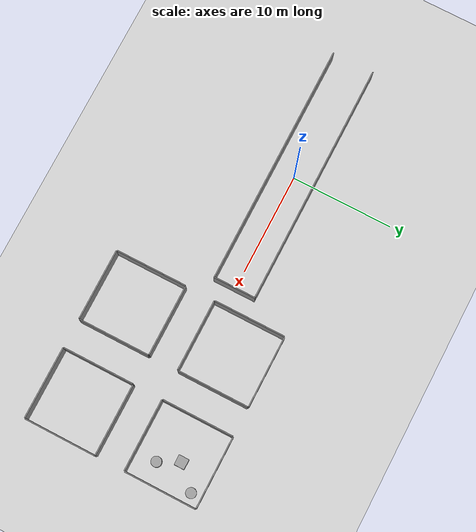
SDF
<sdf version="1.6">
 <world name="default">
  <include><uri>model://ground_plane</uri></include>
  <include><uri>model://sun</uri></include>
  <model name="white-wall">
   <link name="Wall_0">
    <collision name="Wall_0_Collision"><geometry><box><size>24 0.1 2</size></box></geometry></collision>
    <visual name="Wall_0_Visual">
     <geometry><box><size>24 0.1 2</size></box></geometry>
     <material>
      <script><uri>file://media/materials/scripts/gazebo.material</uri><name>Gazebo/Grey</name></script>
      <ambient>1 1 1 1</ambient>
     </material>
     <meta><layer>0</layer></meta>
    </visual>
    <pose>0 -2.05 1 0 -0 0</pose>
   </link>
   <link name="Wall_1">
    <collision name="Wall_1_Collision"><geometry><box><size>24 0.1 2</size></box></geometry></collision>
    <visual name="Wall_1_Visual">
     <geometry><box><size>24 0.1 2</size></box></geometry>
     <material>
      <script><uri>file://media/materials/scripts/gazebo.material</uri><name>Gazebo/Grey</name></script>
      <ambient>1 1 1 1</ambient>
     </material>
     <meta><layer>0</layer></meta>
    </visual>
    <pose>0 2.05 1 0 -0 0</pose>
   </link>
   <link name="Wall_2">
    <collision name="Wall_2_Collision"><geometry><box><size>0.1 4.2 2</size></box></geometry></collision>
    <visual name="Wall_2_Visual">
     <geometry><box><size>0.1 4.2 2</size></box></geometry>
     <material>
      <script><uri>file://media/materials/scripts/gazebo.material</uri><name>Gazebo/Grey</name></script>
      <ambient>1 1 1 1</ambient>
     </material>
     <meta><layer>0</layer></meta>
    </visual>
    <pose>12.05 0 1 0 -0 0</pose>
   </link>
   <static>1</static>
  </model>
  <model name="wall_left">
   <pose>15 0 0 0 0 0</pose>
   <link name="Wall_bottom">
    <collision name="Wall_0_Collision"><geometry><box><size>7 0.1 2</size></box></geometry></collision>
    <visual name="Wall_0_Visual">
     <geometry><box><size>7 0.1 2</size></box></geometry>
     <material>
      <script><uri>file://media/materials/scripts/gazebo.material</uri><name>Gazebo/Grey</name></script>
      <ambient>1 1 1 1</ambient>
     </material>
     <meta><layer>0</layer></meta>
    </visual>
    <pose>2.5 -1.05 1 0 -0 0</pose>
   </link>
   <link name="Wall_up">
    <collision name="Wall_0_Collision"><geometry><box><size>7 0.1 2</size></box></geometry></collision>
    <visual name="Wall_0_Visual">
     <geometry><box><size>7 0.1 2</size></box></geometry>
     <material>
      <script><uri>file://media/materials/scripts/gazebo.material</uri><name>Gazebo/Grey</name></script>
      <ambient>1 1 1 1</ambient>
     </material>
     <meta><layer>0</layer></meta>
    </visual>
    <pose>2.5 6.05 1 0 -0 0</pose>
   </link>
   <link name="Wall_left">
    <collision name="Wall_1_Collision"><geometry><box><size>0.1 7 2</size></box></geometry></collision>
    <visual name="Wall_1_Visual">
     <geometry><box><size>0.1 7 2</size></box></geometry>
     <material>
      <script><uri>file://media/materials/scripts/gazebo.material</uri><name>Gazebo/Grey</name></script>
      <ambient>1 1 1 1</ambient>
     </material>
     <meta><layer>0</layer></meta>
    </visual>
    <pose>-1.05 2.5 1 0 -0 0</pose>
   </link>
   <link name="Wall_right">
    <collision name="Wall_1_Collision"><geometry><box><size>0.1 7 2</size></box></geometry></collision>
    <visual name="Wall_1_Visual">
     <geometry><box><size>0.1 7 2</size></box></geometry>
     <material>
      <script><uri>file://media/materials/scripts/gazebo.material</uri><name>Gazebo/Grey</name></script>
      <ambient>1 1 1 1</ambient>
     </material>
     <meta><layer>0</layer></meta>
    </visual>
    <pose>6.05 2.5 1 0 -0 0</pose>
   </link>
   <static>1</static>
  </model>
  <model name="wall_right">
   <pose>25 0 0 0 0 0</pose>
   <link name="Wall_bottom">
    <collision name="Wall_0_Collision"><geometry><box><size>7 0.1 2</size></box></geometry></collision>
    <visual name="Wall_0_Visual">
     <geometry><box><size>7 0.1 2</size></box></geometry>
     <material>
      <script><uri>file://media/materials/scripts/gazebo.material</uri><name>Gazebo/Grey</name></script>
      <ambient>1 1 1 1</ambient>
     </material>
     <meta><layer>0</layer></meta>
    </visual>
    <pose>2.5 -1.05 1 0 -0 0</pose>
   </link>
   <link name="Wall_up">
    <collision name="Wall_0_Collision"><geometry><box><size>7 0.1 2</size></box></geometry></collision>
    <visual name="Wall_0_Visual">
     <geometry><box><size>7 0.1 2</size></box></geometry>
     <material>
      <script><uri>file://media/materials/scripts/gazebo.material</uri><name>Gazebo/Grey</name></script>
      <ambient>1 1 1 1</ambient>
     </material>
     <meta><layer>0</layer></meta>
    </visual>
    <pose>2.5 6.05 1 0 -0 0</pose>
   </link>
   <link name="Wall_left">
    <collision name="Wall_1_Collision"><geometry><box><size>0.1 7 2</size></box></geometry></collision>
    <visual name="Wall_1_Visual">
     <geometry><box><size>0.1 7 2</size></box></geometry>
     <material>
      <script><uri>file://media/materials/scripts/gazebo.material</uri><name>Gazebo/Grey</name></script>
      <ambient>1 1 1 1</ambient>
     </material>
     <meta><layer>0</layer></meta>
    </visual>
    <pose>-1.05 2.5 1 0 -0 0</pose>
   </link>
   <link name="Wall_right">
    <collision name="Wall_1_Collision"><geometry><box><size>0.1 7 2</size></box></geometry></collision>
    <visual name="Wall_1_Visual">
     <geometry><box><size>0.1 7 2</size></box></geometry>
     <material>
      <script><uri>file://media/materials/scripts/gazebo.material</uri><name>Gazebo/Grey</name></script>
      <ambient>1 1 1 1</ambient>
     </material>
     <meta><layer>0</layer></meta>
    </visual>
    <pose>6.05 2.5 1 0 -0 0</pose>
   </link>
   <static>1</static>
  </model>
  <model name="wall_left_down">
   <pose>15 -10 0 0 0 0</pose>
   <link name="Wall_bottom">
    <collision name="Wall_0_Collision"><geometry><box><size>7 0.1 2</size></box></geometry></collision>
    <visual name="Wall_0_Visual">
     <geometry><box><size>7 0.1 2</size></box></geometry>
     <material>
      <script><uri>file://media/materials/scripts/gazebo.material</uri><name>Gazebo/Grey</name></script>
      <ambient>1 1 1 1</ambient>
     </material>
     <meta><layer>0</layer></meta>
    </visual>
    <pose>2.5 -1.05 1 0 -0 0</pose>
   </link>
   <link name="Wall_up">
    <collision name="Wall_0_Collision"><geometry><box><size>7 0.1 2</size></box></geometry></collision>
    <visual name="Wall_0_Visual">
     <geometry><box><size>7 0.1 2</size></box></geometry>
     <material>
      <script><uri>file://media/materials/scripts/gazebo.material</uri><name>Gazebo/Grey</name></script>
      <ambient>1 1 1 1</ambient>
     </material>
     <meta><layer>0</layer></meta>
    </visual>
    <pose>2.5 6.05 1 0 -0 0</pose>
   </link>
   <link name="Wall_left">
    <collision name="Wall_1_Collision"><geometry><box><size>0.1 7 2</size></box></geometry></collision>
    <visual name="Wall_1_Visual">
     <geometry><box><size>0.1 7 2</size></box></geometry>
     <material>
      <script><uri>file://media/materials/scripts/gazebo.material</uri><name>Gazebo/Grey</name></script>
      <ambient>1 1 1 1</ambient>
     </material>
     <meta><layer>0</layer></meta>
    </visual>
    <pose>-1.05 2.5 1 0 -0 0</pose>
   </link>
   <link name="Wall_right">
    <collision name="Wall_1_Collision"><geometry><box><size>0.1 7 2</size></box></geometry></collision>
    <visual name="Wall_1_Visual">
     <geometry><box><size>0.1 7 2</size></box></geometry>
     <material>
      <script><uri>file://media/materials/scripts/gazebo.material</uri><name>Gazebo/Grey</name></script>
      <ambient>1 1 1 1</ambient>
     </material>
     <meta><layer>0</layer></meta>
    </visual>
    <pose>6.05 2.5 1 0 -0 0</pose>
   </link>
   <static>1</static>
  </model>
  <model name="wall_right_down">
   <pose>25 -10 0 0 0 0</pose>
   <link name="Wall_bottom">
    <collision name="Wall_0_Collision"><geometry><box><size>7 0.1 2</size></box></geometry></collision>
    <visual name="Wall_0_Visual">
     <geometry><box><size>7 0.1 2</size></box></geometry>
     <material>
      <script><uri>file://media/materials/scripts/gazebo.material</uri><name>Gazebo/Grey</name></script>
      <ambient>1 1 1 1</ambient>
     </material>
     <meta><layer>0</layer></meta>
    </visual>
    <pose>2.5 -1.05 1 0 -0 0</pose>
   </link>
   <link name="Wall_up">
    <collision name="Wall_0_Collision"><geometry><box><size>7 0.1 2</size></box></geometry></collision>
    <visual name="Wall_0_Visual">
     <geometry><box><size>7 0.1 2</size></box></geometry>
     <material>
      <script><uri>file://media/materials/scripts/gazebo.material</uri><name>Gazebo/Grey</name></script>
      <ambient>1 1 1 1</ambient>
     </material>
     <meta><layer>0</layer></meta>
    </visual>
    <pose>2.5 6.05 1 0 -0 0</pose>
   </link>
   <link name="Wall_left">
    <collision name="Wall_1_Collision"><geometry><box><size>0.1 7 2</size></box></geometry></collision>
    <visual name="Wall_1_Visual">
     <geometry><box><size>0.1 7 2</size></box></geometry>
     <material>
      <script><uri>file://media/materials/scripts/gazebo.material</uri><name>Gazebo/Grey</name></script>
      <ambient>1 1 1 1</ambient>
     </material>
     <meta><layer>0</layer></meta>
    </visual>
    <pose>-1.05 2.5 1 0 -0 0</pose>
   </link>
   <link name="Wall_right">
    <collision name="Wall_1_Collision"><geometry><box><size>0.1 7 2</size></box></geometry></collision>
    <visual name="Wall_1_Visual">
     <geometry><box><size>0.1 7 2</size></box></geometry>
     <material>
      <script><uri>file://media/materials/scripts/gazebo.material</uri><name>Gazebo/Grey</name></script>
      <ambient>1 1 1 1</ambient>
     </material>
     <meta><layer>0</layer></meta>
    </visual>
    <pose>6.05 2.5 1 0 -0 0</pose>
   </link>
   <static>1</static>
  </model>
  <model name="unit_box">
   <pose>28 3 0.5 0 -0 0</pose>
   <link name="link">
    <inertial>
     <mass>1</mass>
     <inertia>
      <ixx>0.166667</ixx>
      <ixy>0</ixy>
      <ixz>0</ixz>
      <iyy>0.166667</iyy>
      <iyz>0</iyz>
      <izz>0.166667</izz>
     </inertia>
    </inertial>
    <collision name="collision"><geometry><box><size>1 1 1</size></box></geometry></collision>
    <visual name="visual">
     <geometry><box><size>1 1 1</size></box></geometry>
     <material>
      <script><name>Gazebo/Grey</name><uri>file://media/materials/scripts/gazebo.material</uri></script>
     </material>
    </visual>
   </link>
  </model>
  <model name="unit_cylinder0">
   <pose>29 1 0.5 0 -0 0</pose>
   <link name="link">
    <inertial>
     <mass>1</mass>
     <inertia><ixx>0.145833</ixx><ixy>0</ixy><ixz>0</ixz><iyy>0.145833</iyy><iyz>0</iyz><izz>0.125</izz></inertia>
    </inertial>
    <collision name="collision">
     <geometry><cylinder><radius>0.5</radius><length>1</length></cylinder></geometry>
    </collision>
    <visual name="visual">
     <geometry><cylinder><radius>0.5</radius><length>1</length></cylinder></geometry>
     <material>
      <script><name>Gazebo/Grey</name><uri>file://media/materials/scripts/gazebo.material</uri></script>
     </material>
    </visual>
   </link>
  </model>
  <model name="unit_cylinder1">
   <pose>30 5 0.5 0 -0 0</pose>
   <link name="link">
    <inertial>
     <mass>1</mass>
     <inertia><ixx>0.145833</ixx><ixy>0</ixy><ixz>0</ixz><iyy>0.145833</iyy><iyz>0</iyz><izz>0.125</izz></inertia>
    </inertial>
    <collision name="collision">
     <geometry><cylinder><radius>0.5</radius><length>1</length></cylinder></geometry>
    </collision>
    <visual name="visual">
     <geometry><cylinder><radius>0.5</radius><length>1</length></cylinder></geometry>
     <material>
      <script><name>Gazebo/Grey</name><uri>file://media/materials/scripts/gazebo.material</uri></script>
     </material>
    </visual>
   </link>
  </model>
 </world>
</sdf>
